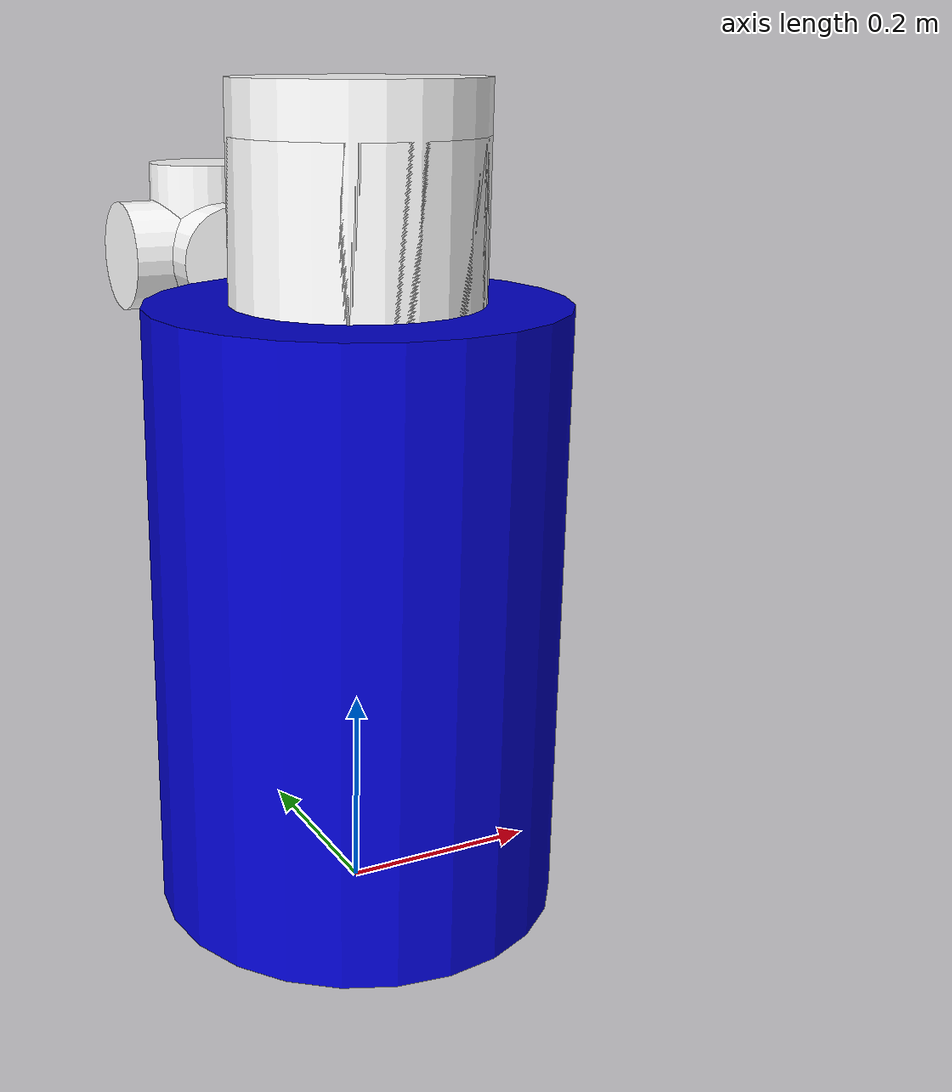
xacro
<?xml version="1.0"?>
<robot xmlns:xacro="http://www.ros.org/wiki/xacro" name="STANFORD">

<xacro:property name="l0" value="0.6" />
<xacro:property name="l1" value="0.4" />

<xacro:property name="lb" value="0.0" />
<xacro:property name="ub" value="3.1415" />
<xacro:property name="PI" value="3.1415" />

<xacro:property name="m1" value="6.5" />
<xacro:property name="m2" value="3.5" />
<xacro:property name="m3" value="2.5" />
<xacro:property name="m4" value="1.5" />
<xacro:property name="m5" value="0.5" />
<xacro:property name="m6" value="0.2" />

<xacro:property name="metaI" value="0.3" />

<xacro:property name="r0" value="0.4" />
<xacro:property name="r1" value="0.2" />
<xacro:property name="r2" value="0.2" />

  <material name="blue">
    <color rgba="0 0 0.8 1"/>
  </material>

  <material name="white">
    <color rgba="1 1 1 1"/>
  </material>

  <material name="green">
    <color rgba="0 1 0 1"/>
  </material>

  <material name="red">
    <color rgba="1 0 0 1"/>
  </material>

  <link name="world"/>
  <joint name="arm_to_world_fixed" type="fixed">
    <parent link="world"/>
    <child link="base_link"/>
    <origin xyz="0 0 0" rpy="0 0 0" />
  </joint>

  <link name="base_link">
   <inertial>
     <origin xyz="0 0 0" rpy="0 0 0"/>
     <mass value="${m1 + m1}"/>
     <inertia ixx="${metaI}"  ixy="0"  ixz="0" iyy="${metaI}" iyz="0" izz="${metaI}" />
   </inertial>

    <visual>
      <geometry>
	      <cylinder length="${l0}" radius="0.2"/>
      </geometry>
      <material name="blue"/>
      <origin rpy="0 0 0" xyz="0 0 ${l0/2}"/>
    </visual>
  </link>

  <link name="link_1">
   <inertial>
	   <origin xyz="0 0 ${l0 - r0}" rpy="0 0 0"/>
     <mass value="${m2}"/>
     <inertia ixx="${metaI}"  ixy="0"  ixz="0" iyy="${metaI}" iyz="0" izz="${metaI}" />
   </inertial>

    <visual>
      <geometry>
	      <cylinder length="0.3" radius="0.12"/>
      </geometry>
      <material name="white"/>
      <origin rpy="0 0 0" xyz="0 0 0"/>
    </visual>
  </link>

  <joint name="joint_1" type="revolute">
    <axis xyz="0 0 1"/>
    <limit effort="1000.0" lower="${lb}" upper="${ub}" velocity="0.5"/>
    <origin rpy="0 0 0" xyz="0 0 ${l0}"/>
    <parent link="base_link"/>
    <child link="link_1"/>
  </joint>

   <link name="link_2">
   <inertial>
	   <origin xyz="0 ${r1} 0" rpy="0 0 0"/>
     <mass value="${m2}"/>
     <inertia ixx="${metaI}"  ixy="0"  ixz="0" iyy="${metaI}" iyz="0" izz="${metaI}" />
   </inertial>

    <visual>
      <geometry>
	      <cylinder length="0.4" radius="0.12"/>
      </geometry>
      <material name="white"/>
      <origin rpy="0 0 0" xyz="0 0 0"/>
    </visual>
  </link>

  <joint name="joint_2" type="revolute">
    <axis xyz="-1 0 0"/>
    <limit effort="1000.0" lower="${lb}" upper="${ub}" velocity="0.5"/>
    <origin rpy="0 0 0" xyz="0 0 0"/>
    <parent link="link_1"/>
    <child link="link_2"/>
  </joint>

  <link name="link_3">
   <inertial>
	   <origin xyz="0 ${r2} 0" rpy="0 0 0"/>
     <mass value="${m3}"/>
     <inertia ixx="${metaI}"  ixy="0"  ixz="0" iyy="${metaI}" iyz="0" izz="${metaI}" />
   </inertial>

    <visual>
      <geometry>
	      <cylinder length="0.4" radius="0.12"/>
      </geometry>
      <material name="white"/>
      <origin rpy="0 0 0" xyz="0 0 0"/>
    </visual>
  </link>

  <joint name="joint_3" type="prismatic">
    <axis xyz="0 1 0"/>
    <limit effort="1000.0" lower="${lb}" upper="${ub}" velocity="0.5"/>
    <origin rpy="0 0 0" xyz="0 0 0"/>
    <parent link="link_2"/>
    <child link="link_3"/>
  </joint>

  <link name="link_4">
   <inertial>
     <origin xyz="0 0 0" rpy="0 0 0"/>
     <mass value="${m4}"/>
     <inertia ixx="${metaI}"  ixy="0"  ixz="0" iyy="${metaI}" iyz="0" izz="${metaI}" />
   </inertial>

    <visual>
      <geometry>
	      <cylinder length="0.2" radius="0.06"/>
      </geometry>
      <material name="white"/>
      <origin rpy="0 ${PI/2} 0" xyz="0 0 0"/>
    </visual>
  </link>

  <joint name="joint_4" type="revolute">
    <axis xyz="0 0 1"/>
    <limit effort="1000.0" lower="${lb}" upper="${ub}" velocity="0.5"/>
    <origin rpy="0 0 0" xyz="0 ${l1} 0"/>
    <parent link="link_3"/>
    <child link="link_4"/>
  </joint>

  <link name="link_5">
   <inertial>
     <origin xyz="0 0 0" rpy="0 0 0"/>
     <mass value="${m5}"/>
     <inertia ixx="${metaI}"  ixy="0"  ixz="0" iyy="${metaI}" iyz="0" izz="${metaI}" />
   </inertial>

    <visual>
      <geometry>
	      <cylinder length="0.2" radius="0.06"/>
      </geometry>
      <material name="white"/>
      <origin rpy="0 0 0 " xyz="0 0 0"/>
    </visual>
  </link>

  <joint name="joint_5" type="revolute">
    <axis xyz="-1 0 0"/>
    <limit effort="1000.0" lower="${lb}" upper="${ub}" velocity="0.5"/>
    <origin rpy="0 0 0" xyz="0 0 0"/>
    <parent link="link_4"/>
    <child link="link_5"/>
  </joint>

  <link name="link_6">
   <inertial>
     <origin xyz="0 0 0" rpy="0 0 0"/>
     <mass value="${m6}"/>
     <inertia ixx="${metaI}"  ixy="0"  ixz="0" iyy="${metaI}" iyz="0" izz="${metaI}" />
   </inertial>

    <visual>
      <geometry>
	      <cylinder length="0.2" radius="0.06"/>
      </geometry>
      <material name="white"/>
      <origin rpy="${PI/2} 0 0" xyz="0 0 0"/>
    </visual>
  </link>

  <joint name="joint_6" type="revolute">
    <axis xyz="0 1 0"/>
    <limit effort="1000.0" lower="${lb}" upper="${ub}" velocity="0.5"/>
    <origin rpy="0 0 0" xyz="0 0 0"/>
    <parent link="link_5"/>
    <child link="link_6"/>
  </joint>

  <link name="EndEffector">
   <inertial>
     <origin xyz="0 0 0" rpy="0 0 0"/>
     <mass value="0"/>
     <inertia ixx="0"  ixy="0"  ixz="0" iyy="0" iyz="0" izz="0" />
   </inertial>

    <visual>
      <geometry>
	  <box size="0.05 0.1 0.03"/>
      </geometry>
      <material name="green"/>
      <origin rpy="0 0 0" xyz="0 0 0"/>
    </visual>
  </link>

  <joint name="joint_7" type="fixed">
    <axis xyz="0 1 0"/>
    <origin rpy="0 0 0" xyz="0 0.1 0"/>
    <parent link="link_6"/>
    <child link="EndEffector"/>
  </joint>

</robot>
